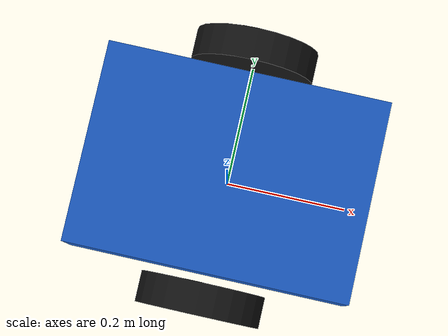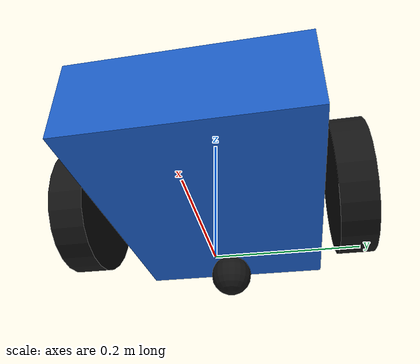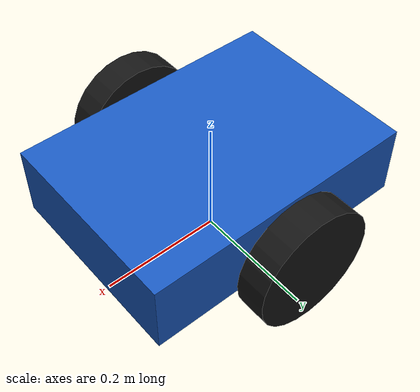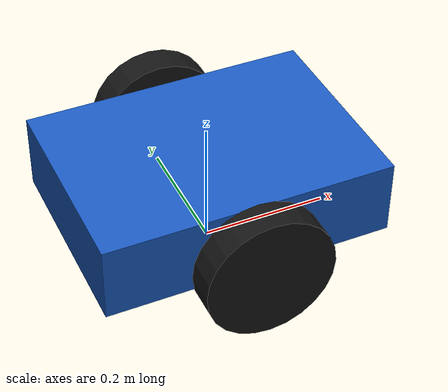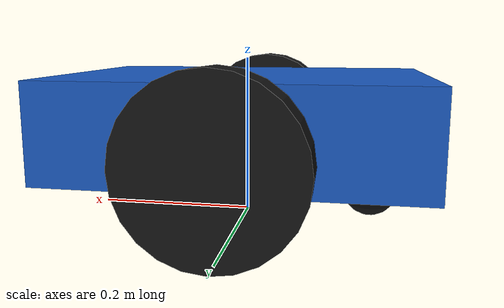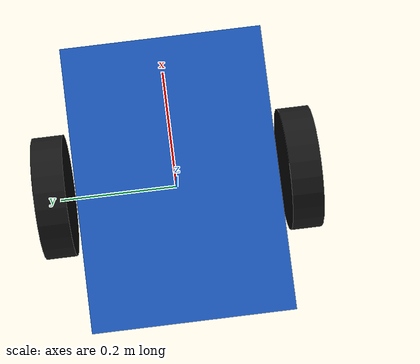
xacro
<?xml version="1.0"?>
<robot xmlns:xacro="http://www.ros.org/wiki/xacro" name="vcan_diffbot">
  <xacro:arg name="can_interface" default="vcan0"/>
  <xacro:arg name="left_node_id" default="1"/>
  <xacro:arg name="right_node_id" default="2"/>
  <xacro:arg name="encoder_counts_per_revolution" default="4096"/>
  <xacro:arg name="command_watchdog_ms" default="200"/>
  <xacro:arg name="ack_timeout_ms" default="200"/>
  <xacro:arg name="feedback_timeout_ms" default="500"/>
  <xacro:property name="wheel_radius" value="0.10"/>
  <xacro:property name="wheel_width" value="0.05"/>
  <xacro:property name="wheel_separation" value="0.40"/>

  <xacro:include filename="$(find vcan_diffbot_demo)/urdf/diffbot.ros2_control.xacro"/>

  <material name="body_blue">
    <color rgba="0.10 0.35 0.75 1.0"/>
  </material>
  <material name="wheel_dark">
    <color rgba="0.08 0.08 0.08 1.0"/>
  </material>

  <link name="base_footprint"/>
  <joint name="base_footprint_joint" type="fixed">
    <parent link="base_footprint"/>
    <child link="base_link"/>
  </joint>

  <link name="base_link">
    <visual>
      <origin xyz="0 0 0.12"/>
      <geometry><box size="0.45 0.32 0.12"/></geometry>
      <material name="body_blue"/>
    </visual>
    <collision>
      <origin xyz="0 0 0.12"/>
      <geometry><box size="0.45 0.32 0.12"/></geometry>
    </collision>
    <inertial>
      <origin xyz="0 0 0.12"/>
      <mass value="8.0"/>
      <inertia ixx="0.080" ixy="0" ixz="0" iyy="0.140" iyz="0" izz="0.180"/>
    </inertial>
  </link>

  <xacro:macro name="wheel" params="side sign">
    <link name="${side}_wheel_link">
      <visual>
        <origin rpy="1.57079632679 0 0"/>
        <geometry><cylinder radius="${wheel_radius}" length="${wheel_width}"/></geometry>
        <material name="wheel_dark"/>
      </visual>
      <collision>
        <origin rpy="1.57079632679 0 0"/>
        <geometry><cylinder radius="${wheel_radius}" length="${wheel_width}"/></geometry>
      </collision>
      <inertial>
        <mass value="0.7"/>
        <inertia ixx="0.002" ixy="0" ixz="0" iyy="0.004" iyz="0" izz="0.002"/>
      </inertial>
    </link>
    <joint name="${side}_wheel_joint" type="continuous">
      <origin xyz="0 ${sign * wheel_separation / 2.0} ${wheel_radius}"/>
      <parent link="base_link"/>
      <child link="${side}_wheel_link"/>
      <axis xyz="0 1 0"/>
    </joint>
  </xacro:macro>

  <xacro:wheel side="left" sign="1"/>
  <xacro:wheel side="right" sign="-1"/>

  <link name="caster_link">
    <visual>
      <geometry><sphere radius="0.035"/></geometry>
      <material name="wheel_dark"/>
    </visual>
    <collision><geometry><sphere radius="0.035"/></geometry></collision>
    <inertial>
      <mass value="0.1"/>
      <inertia ixx="0.00005" ixy="0" ixz="0" iyy="0.00005" iyz="0" izz="0.00005"/>
    </inertial>
  </link>
  <joint name="caster_joint" type="fixed">
    <origin xyz="-0.16 0 0.035"/>
    <parent link="base_link"/>
    <child link="caster_link"/>
  </joint>

  <xacro:vcan_diffbot_ros2_control
    name="VcanDiffBot"
    can_interface="$(arg can_interface)"
    left_node_id="$(arg left_node_id)"
    right_node_id="$(arg right_node_id)"
    encoder_counts_per_revolution="$(arg encoder_counts_per_revolution)"
    command_watchdog_ms="$(arg command_watchdog_ms)"
    ack_timeout_ms="$(arg ack_timeout_ms)"
    feedback_timeout_ms="$(arg feedback_timeout_ms)"/>
</robot>
